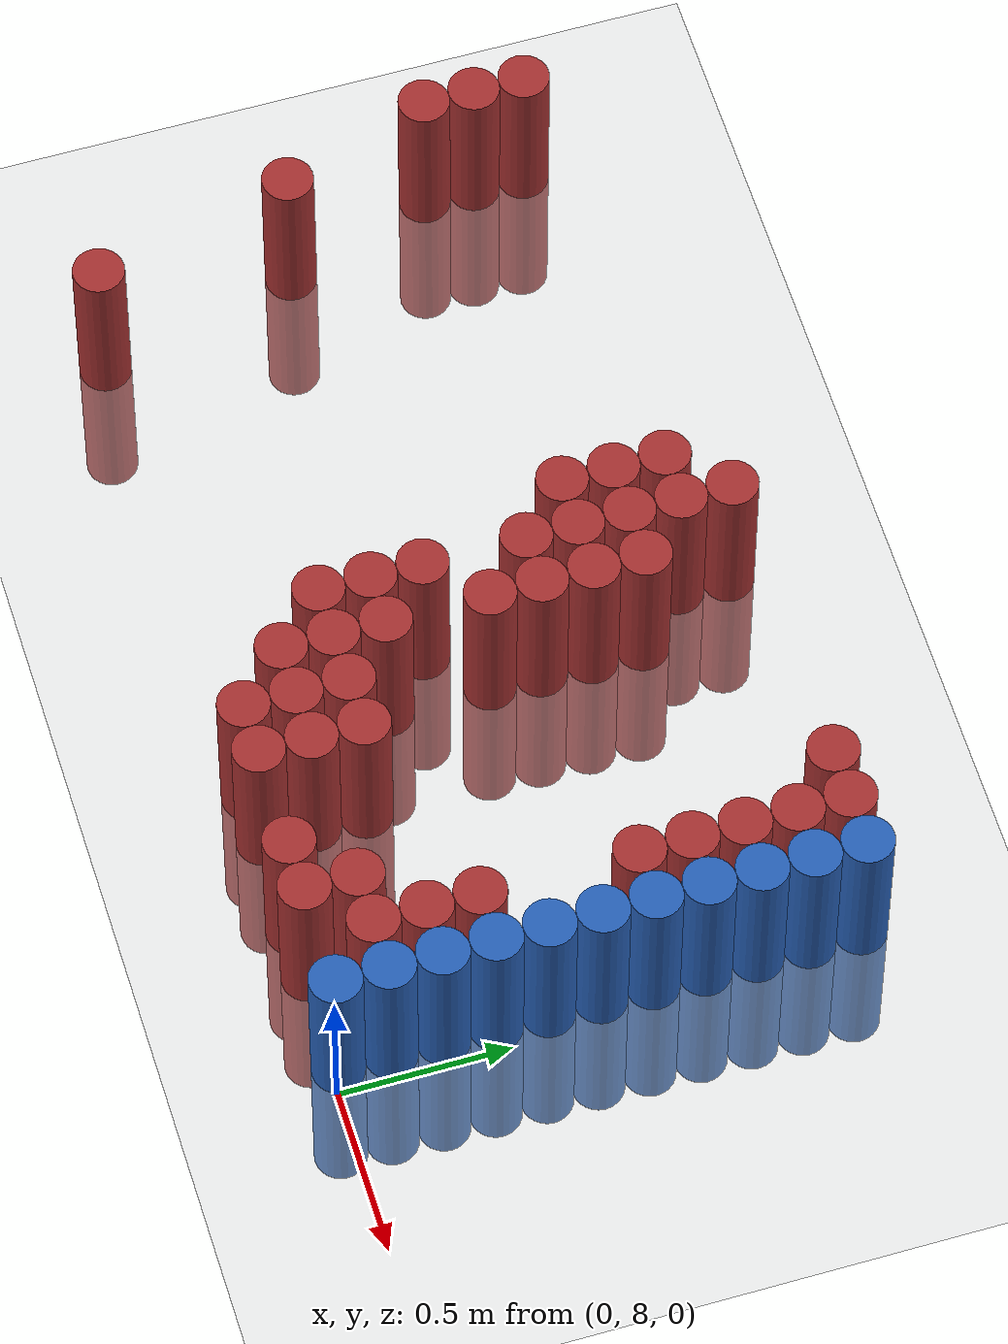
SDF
<sdf version="1.6">
 <world name="default">
  <model name="ground_plane">
   <static>1</static>
   <link name="link">
    <collision name="collision">
     <geometry><plane><normal>0 0 1</normal><size>100 100</size></plane></geometry>
     <surface><friction><ode><mu>100</mu><mu2>50</mu2></ode></friction></surface>
    </collision>
    <visual name="visual">
     <cast_shadows>0</cast_shadows>
     <geometry><plane><normal>0 0 1</normal><size>100 100</size></plane></geometry>
     <material>
      <script><uri>file://media/materials/scripts/gazebo.material</uri><name>Gazebo/Grey</name></script>
     </material>
    </visual>
   </link>
  </model>
  <model name="unit_cylinder_223">
   <static>1</static>
   <pose>-2.775000 9.075000 0.000000 0.000000 0.000000 0.000000</pose>
   <link name="link">
    <inertial>
     <mass>1</mass>
     <inertia><ixx>0.145833</ixx><ixy>0</ixy><ixz>0</ixz><iyy>0.145833</iyy><iyz>0</iyz><izz>0.125</izz></inertia>
    </inertial>
    <collision name="collision">
     <geometry><cylinder><radius>0.075000</radius><length>1</length></cylinder></geometry>
    </collision>
    <visual name="visual">
     <geometry><cylinder><radius>0.075000</radius><length>1</length></cylinder></geometry>
     <material>
      <ambient>0.648000 0.192000 0.192000 1</ambient>
      <diffuse>0.648000 0.192000 0.192000 1</diffuse>
     </material>
     <material>
      <script><name>Gazebo/Grey</name><uri>file://media/materials/scripts/gazebo.material</uri></script>
     </material>
    </visual>
   </link>
  </model>
  <model name="unit_cylinder_224">
   <static>1</static>
   <pose>-2.775000 9.225000 0.000000 0.000000 0.000000 0.000000</pose>
   <link name="link">
    <inertial>
     <mass>1</mass>
     <inertia><ixx>0.145833</ixx><ixy>0</ixy><ixz>0</ixz><iyy>0.145833</iyy><iyz>0</iyz><izz>0.125</izz></inertia>
    </inertial>
    <collision name="collision">
     <geometry><cylinder><radius>0.075000</radius><length>1</length></cylinder></geometry>
    </collision>
    <visual name="visual">
     <geometry><cylinder><radius>0.075000</radius><length>1</length></cylinder></geometry>
     <material>
      <ambient>0.648000 0.192000 0.192000 1</ambient>
      <diffuse>0.648000 0.192000 0.192000 1</diffuse>
     </material>
     <material>
      <script><name>Gazebo/Grey</name><uri>file://media/materials/scripts/gazebo.material</uri></script>
     </material>
    </visual>
   </link>
  </model>
  <model name="unit_cylinder_225">
   <static>1</static>
   <pose>-2.775000 9.375000 0.000000 0.000000 0.000000 0.000000</pose>
   <link name="link">
    <inertial>
     <mass>1</mass>
     <inertia><ixx>0.145833</ixx><ixy>0</ixy><ixz>0</ixz><iyy>0.145833</iyy><iyz>0</iyz><izz>0.125</izz></inertia>
    </inertial>
    <collision name="collision">
     <geometry><cylinder><radius>0.075000</radius><length>1</length></cylinder></geometry>
    </collision>
    <visual name="visual">
     <geometry><cylinder><radius>0.075000</radius><length>1</length></cylinder></geometry>
     <material>
      <ambient>0.648000 0.192000 0.192000 1</ambient>
      <diffuse>0.648000 0.192000 0.192000 1</diffuse>
     </material>
     <material>
      <script><name>Gazebo/Grey</name><uri>file://media/materials/scripts/gazebo.material</uri></script>
     </material>
    </visual>
   </link>
  </model>
  <model name="unit_cylinder_231">
   <static>1</static>
   <pose>-2.625000 8.625000 0.000000 0.000000 0.000000 0.000000</pose>
   <link name="link">
    <inertial>
     <mass>1</mass>
     <inertia><ixx>0.145833</ixx><ixy>0</ixy><ixz>0</ixz><iyy>0.145833</iyy><iyz>0</iyz><izz>0.125</izz></inertia>
    </inertial>
    <collision name="collision">
     <geometry><cylinder><radius>0.075000</radius><length>1</length></cylinder></geometry>
    </collision>
    <visual name="visual">
     <geometry><cylinder><radius>0.075000</radius><length>1</length></cylinder></geometry>
     <material>
      <ambient>0.648000 0.192000 0.192000 1</ambient>
      <diffuse>0.648000 0.192000 0.192000 1</diffuse>
     </material>
     <material>
      <script><name>Gazebo/Grey</name><uri>file://media/materials/scripts/gazebo.material</uri></script>
     </material>
    </visual>
   </link>
  </model>
  <model name="unit_cylinder_238">
   <static>1</static>
   <pose>-2.475000 8.025000 0.000000 0.000000 0.000000 0.000000</pose>
   <link name="link">
    <inertial>
     <mass>1</mass>
     <inertia><ixx>0.145833</ixx><ixy>0</ixy><ixz>0</ixz><iyy>0.145833</iyy><iyz>0</iyz><izz>0.125</izz></inertia>
    </inertial>
    <collision name="collision">
     <geometry><cylinder><radius>0.075000</radius><length>1</length></cylinder></geometry>
    </collision>
    <visual name="visual">
     <geometry><cylinder><radius>0.075000</radius><length>1</length></cylinder></geometry>
     <material>
      <ambient>0.648000 0.192000 0.192000 1</ambient>
      <diffuse>0.648000 0.192000 0.192000 1</diffuse>
     </material>
     <material>
      <script><name>Gazebo/Grey</name><uri>file://media/materials/scripts/gazebo.material</uri></script>
     </material>
    </visual>
   </link>
  </model>
  <model name="unit_cylinder_245">
   <static>1</static>
   <pose>-1.425000 9.075000 0.000000 0.000000 0.000000 0.000000</pose>
   <link name="link">
    <inertial>
     <mass>1</mass>
     <inertia><ixx>0.145833</ixx><ixy>0</ixy><ixz>0</ixz><iyy>0.145833</iyy><iyz>0</iyz><izz>0.125</izz></inertia>
    </inertial>
    <collision name="collision">
     <geometry><cylinder><radius>0.075000</radius><length>1</length></cylinder></geometry>
    </collision>
    <visual name="visual">
     <geometry><cylinder><radius>0.075000</radius><length>1</length></cylinder></geometry>
     <material>
      <ambient>0.648000 0.192000 0.192000 1</ambient>
      <diffuse>0.648000 0.192000 0.192000 1</diffuse>
     </material>
     <material>
      <script><name>Gazebo/Grey</name><uri>file://media/materials/scripts/gazebo.material</uri></script>
     </material>
    </visual>
   </link>
  </model>
  <model name="unit_cylinder_246">
   <static>1</static>
   <pose>-1.425000 9.225000 0.000000 0.000000 0.000000 0.000000</pose>
   <link name="link">
    <inertial>
     <mass>1</mass>
     <inertia><ixx>0.145833</ixx><ixy>0</ixy><ixz>0</ixz><iyy>0.145833</iyy><iyz>0</iyz><izz>0.125</izz></inertia>
    </inertial>
    <collision name="collision">
     <geometry><cylinder><radius>0.075000</radius><length>1</length></cylinder></geometry>
    </collision>
    <visual name="visual">
     <geometry><cylinder><radius>0.075000</radius><length>1</length></cylinder></geometry>
     <material>
      <ambient>0.648000 0.192000 0.192000 1</ambient>
      <diffuse>0.648000 0.192000 0.192000 1</diffuse>
     </material>
     <material>
      <script><name>Gazebo/Grey</name><uri>file://media/materials/scripts/gazebo.material</uri></script>
     </material>
    </visual>
   </link>
  </model>
  <model name="unit_cylinder_247">
   <static>1</static>
   <pose>-1.425000 9.375000 0.000000 0.000000 0.000000 0.000000</pose>
   <link name="link">
    <inertial>
     <mass>1</mass>
     <inertia><ixx>0.145833</ixx><ixy>0</ixy><ixz>0</ixz><iyy>0.145833</iyy><iyz>0</iyz><izz>0.125</izz></inertia>
    </inertial>
    <collision name="collision">
     <geometry><cylinder><radius>0.075000</radius><length>1</length></cylinder></geometry>
    </collision>
    <visual name="visual">
     <geometry><cylinder><radius>0.075000</radius><length>1</length></cylinder></geometry>
     <material>
      <ambient>0.648000 0.192000 0.192000 1</ambient>
      <diffuse>0.648000 0.192000 0.192000 1</diffuse>
     </material>
     <material>
      <script><name>Gazebo/Grey</name><uri>file://media/materials/scripts/gazebo.material</uri></script>
     </material>
    </visual>
   </link>
  </model>
  <model name="unit_cylinder_252">
   <static>1</static>
   <pose>-1.275000 8.325000 0.000000 0.000000 0.000000 0.000000</pose>
   <link name="link">
    <inertial>
     <mass>1</mass>
     <inertia><ixx>0.145833</ixx><ixy>0</ixy><ixz>0</ixz><iyy>0.145833</iyy><iyz>0</iyz><izz>0.125</izz></inertia>
    </inertial>
    <collision name="collision">
     <geometry><cylinder><radius>0.075000</radius><length>1</length></cylinder></geometry>
    </collision>
    <visual name="visual">
     <geometry><cylinder><radius>0.075000</radius><length>1</length></cylinder></geometry>
     <material>
      <ambient>0.648000 0.192000 0.192000 1</ambient>
      <diffuse>0.648000 0.192000 0.192000 1</diffuse>
     </material>
     <material>
      <script><name>Gazebo/Grey</name><uri>file://media/materials/scripts/gazebo.material</uri></script>
     </material>
    </visual>
   </link>
  </model>
  <model name="unit_cylinder_253">
   <static>1</static>
   <pose>-1.275000 8.475000 0.000000 0.000000 0.000000 0.000000</pose>
   <link name="link">
    <inertial>
     <mass>1</mass>
     <inertia><ixx>0.145833</ixx><ixy>0</ixy><ixz>0</ixz><iyy>0.145833</iyy><iyz>0</iyz><izz>0.125</izz></inertia>
    </inertial>
    <collision name="collision">
     <geometry><cylinder><radius>0.075000</radius><length>1</length></cylinder></geometry>
    </collision>
    <visual name="visual">
     <geometry><cylinder><radius>0.075000</radius><length>1</length></cylinder></geometry>
     <material>
      <ambient>0.648000 0.192000 0.192000 1</ambient>
      <diffuse>0.648000 0.192000 0.192000 1</diffuse>
     </material>
     <material>
      <script><name>Gazebo/Grey</name><uri>file://media/materials/scripts/gazebo.material</uri></script>
     </material>
    </visual>
   </link>
  </model>
  <model name="unit_cylinder_254">
   <static>1</static>
   <pose>-1.275000 8.625000 0.000000 0.000000 0.000000 0.000000</pose>
   <link name="link">
    <inertial>
     <mass>1</mass>
     <inertia><ixx>0.145833</ixx><ixy>0</ixy><ixz>0</ixz><iyy>0.145833</iyy><iyz>0</iyz><izz>0.125</izz></inertia>
    </inertial>
    <collision name="collision">
     <geometry><cylinder><radius>0.075000</radius><length>1</length></cylinder></geometry>
    </collision>
    <visual name="visual">
     <geometry><cylinder><radius>0.075000</radius><length>1</length></cylinder></geometry>
     <material>
      <ambient>0.648000 0.192000 0.192000 1</ambient>
      <diffuse>0.648000 0.192000 0.192000 1</diffuse>
     </material>
     <material>
      <script><name>Gazebo/Grey</name><uri>file://media/materials/scripts/gazebo.material</uri></script>
     </material>
    </visual>
   </link>
  </model>
  <model name="unit_cylinder_255">
   <static>1</static>
   <pose>-1.275000 8.925000 0.000000 0.000000 0.000000 0.000000</pose>
   <link name="link">
    <inertial>
     <mass>1</mass>
     <inertia><ixx>0.145833</ixx><ixy>0</ixy><ixz>0</ixz><iyy>0.145833</iyy><iyz>0</iyz><izz>0.125</izz></inertia>
    </inertial>
    <collision name="collision">
     <geometry><cylinder><radius>0.075000</radius><length>1</length></cylinder></geometry>
    </collision>
    <visual name="visual">
     <geometry><cylinder><radius>0.075000</radius><length>1</length></cylinder></geometry>
     <material>
      <ambient>0.648000 0.192000 0.192000 1</ambient>
      <diffuse>0.648000 0.192000 0.192000 1</diffuse>
     </material>
     <material>
      <script><name>Gazebo/Grey</name><uri>file://media/materials/scripts/gazebo.material</uri></script>
     </material>
    </visual>
   </link>
  </model>
  <model name="unit_cylinder_256">
   <static>1</static>
   <pose>-1.275000 9.075000 0.000000 0.000000 0.000000 0.000000</pose>
   <link name="link">
    <inertial>
     <mass>1</mass>
     <inertia><ixx>0.145833</ixx><ixy>0</ixy><ixz>0</ixz><iyy>0.145833</iyy><iyz>0</iyz><izz>0.125</izz></inertia>
    </inertial>
    <collision name="collision">
     <geometry><cylinder><radius>0.075000</radius><length>1</length></cylinder></geometry>
    </collision>
    <visual name="visual">
     <geometry><cylinder><radius>0.075000</radius><length>1</length></cylinder></geometry>
     <material>
      <ambient>0.648000 0.192000 0.192000 1</ambient>
      <diffuse>0.648000 0.192000 0.192000 1</diffuse>
     </material>
     <material>
      <script><name>Gazebo/Grey</name><uri>file://media/materials/scripts/gazebo.material</uri></script>
     </material>
    </visual>
   </link>
  </model>
  <model name="unit_cylinder_257">
   <static>1</static>
   <pose>-1.275000 9.225000 0.000000 0.000000 0.000000 0.000000</pose>
   <link name="link">
    <inertial>
     <mass>1</mass>
     <inertia><ixx>0.145833</ixx><ixy>0</ixy><ixz>0</ixz><iyy>0.145833</iyy><iyz>0</iyz><izz>0.125</izz></inertia>
    </inertial>
    <collision name="collision">
     <geometry><cylinder><radius>0.075000</radius><length>1</length></cylinder></geometry>
    </collision>
    <visual name="visual">
     <geometry><cylinder><radius>0.075000</radius><length>1</length></cylinder></geometry>
     <material>
      <ambient>0.648000 0.192000 0.192000 1</ambient>
      <diffuse>0.648000 0.192000 0.192000 1</diffuse>
     </material>
     <material>
      <script><name>Gazebo/Grey</name><uri>file://media/materials/scripts/gazebo.material</uri></script>
     </material>
    </visual>
   </link>
  </model>
  <model name="unit_cylinder_258">
   <static>1</static>
   <pose>-1.275000 9.375000 0.000000 0.000000 0.000000 0.000000</pose>
   <link name="link">
    <inertial>
     <mass>1</mass>
     <inertia><ixx>0.145833</ixx><ixy>0</ixy><ixz>0</ixz><iyy>0.145833</iyy><iyz>0</iyz><izz>0.125</izz></inertia>
    </inertial>
    <collision name="collision">
     <geometry><cylinder><radius>0.075000</radius><length>1</length></cylinder></geometry>
    </collision>
    <visual name="visual">
     <geometry><cylinder><radius>0.075000</radius><length>1</length></cylinder></geometry>
     <material>
      <ambient>0.648000 0.192000 0.192000 1</ambient>
      <diffuse>0.648000 0.192000 0.192000 1</diffuse>
     </material>
     <material>
      <script><name>Gazebo/Grey</name><uri>file://media/materials/scripts/gazebo.material</uri></script>
     </material>
    </visual>
   </link>
  </model>
  <model name="unit_cylinder_259">
   <static>1</static>
   <pose>-1.275000 9.525000 0.000000 0.000000 0.000000 0.000000</pose>
   <link name="link">
    <inertial>
     <mass>1</mass>
     <inertia><ixx>0.145833</ixx><ixy>0</ixy><ixz>0</ixz><iyy>0.145833</iyy><iyz>0</iyz><izz>0.125</izz></inertia>
    </inertial>
    <collision name="collision">
     <geometry><cylinder><radius>0.075000</radius><length>1</length></cylinder></geometry>
    </collision>
    <visual name="visual">
     <geometry><cylinder><radius>0.075000</radius><length>1</length></cylinder></geometry>
     <material>
      <ambient>0.648000 0.192000 0.192000 1</ambient>
      <diffuse>0.648000 0.192000 0.192000 1</diffuse>
     </material>
     <material>
      <script><name>Gazebo/Grey</name><uri>file://media/materials/scripts/gazebo.material</uri></script>
     </material>
    </visual>
   </link>
  </model>
  <model name="unit_cylinder_263">
   <static>1</static>
   <pose>-1.125000 8.175000 0.000000 0.000000 0.000000 0.000000</pose>
   <link name="link">
    <inertial>
     <mass>1</mass>
     <inertia><ixx>0.145833</ixx><ixy>0</ixy><ixz>0</ixz><iyy>0.145833</iyy><iyz>0</iyz><izz>0.125</izz></inertia>
    </inertial>
    <collision name="collision">
     <geometry><cylinder><radius>0.075000</radius><length>1</length></cylinder></geometry>
    </collision>
    <visual name="visual">
     <geometry><cylinder><radius>0.075000</radius><length>1</length></cylinder></geometry>
     <material>
      <ambient>0.648000 0.192000 0.192000 1</ambient>
      <diffuse>0.648000 0.192000 0.192000 1</diffuse>
     </material>
     <material>
      <script><name>Gazebo/Grey</name><uri>file://media/materials/scripts/gazebo.material</uri></script>
     </material>
    </visual>
   </link>
  </model>
  <model name="unit_cylinder_264">
   <static>1</static>
   <pose>-1.125000 8.325000 0.000000 0.000000 0.000000 0.000000</pose>
   <link name="link">
    <inertial>
     <mass>1</mass>
     <inertia><ixx>0.145833</ixx><ixy>0</ixy><ixz>0</ixz><iyy>0.145833</iyy><iyz>0</iyz><izz>0.125</izz></inertia>
    </inertial>
    <collision name="collision">
     <geometry><cylinder><radius>0.075000</radius><length>1</length></cylinder></geometry>
    </collision>
    <visual name="visual">
     <geometry><cylinder><radius>0.075000</radius><length>1</length></cylinder></geometry>
     <material>
      <ambient>0.648000 0.192000 0.192000 1</ambient>
      <diffuse>0.648000 0.192000 0.192000 1</diffuse>
     </material>
     <material>
      <script><name>Gazebo/Grey</name><uri>file://media/materials/scripts/gazebo.material</uri></script>
     </material>
    </visual>
   </link>
  </model>
  <model name="unit_cylinder_265">
   <static>1</static>
   <pose>-1.125000 8.475000 0.000000 0.000000 0.000000 0.000000</pose>
   <link name="link">
    <inertial>
     <mass>1</mass>
     <inertia><ixx>0.145833</ixx><ixy>0</ixy><ixz>0</ixz><iyy>0.145833</iyy><iyz>0</iyz><izz>0.125</izz></inertia>
    </inertial>
    <collision name="collision">
     <geometry><cylinder><radius>0.075000</radius><length>1</length></cylinder></geometry>
    </collision>
    <visual name="visual">
     <geometry><cylinder><radius>0.075000</radius><length>1</length></cylinder></geometry>
     <material>
      <ambient>0.648000 0.192000 0.192000 1</ambient>
      <diffuse>0.648000 0.192000 0.192000 1</diffuse>
     </material>
     <material>
      <script><name>Gazebo/Grey</name><uri>file://media/materials/scripts/gazebo.material</uri></script>
     </material>
    </visual>
   </link>
  </model>
  <model name="unit_cylinder_266">
   <static>1</static>
   <pose>-1.125000 8.775000 0.000000 0.000000 0.000000 0.000000</pose>
   <link name="link">
    <inertial>
     <mass>1</mass>
     <inertia><ixx>0.145833</ixx><ixy>0</ixy><ixz>0</ixz><iyy>0.145833</iyy><iyz>0</iyz><izz>0.125</izz></inertia>
    </inertial>
    <collision name="collision">
     <geometry><cylinder><radius>0.075000</radius><length>1</length></cylinder></geometry>
    </collision>
    <visual name="visual">
     <geometry><cylinder><radius>0.075000</radius><length>1</length></cylinder></geometry>
     <material>
      <ambient>0.648000 0.192000 0.192000 1</ambient>
      <diffuse>0.648000 0.192000 0.192000 1</diffuse>
     </material>
     <material>
      <script><name>Gazebo/Grey</name><uri>file://media/materials/scripts/gazebo.material</uri></script>
     </material>
    </visual>
   </link>
  </model>
  <model name="unit_cylinder_267">
   <static>1</static>
   <pose>-1.125000 8.925000 0.000000 0.000000 0.000000 0.000000</pose>
   <link name="link">
    <inertial>
     <mass>1</mass>
     <inertia><ixx>0.145833</ixx><ixy>0</ixy><ixz>0</ixz><iyy>0.145833</iyy><iyz>0</iyz><izz>0.125</izz></inertia>
    </inertial>
    <collision name="collision">
     <geometry><cylinder><radius>0.075000</radius><length>1</length></cylinder></geometry>
    </collision>
    <visual name="visual">
     <geometry><cylinder><radius>0.075000</radius><length>1</length></cylinder></geometry>
     <material>
      <ambient>0.648000 0.192000 0.192000 1</ambient>
      <diffuse>0.648000 0.192000 0.192000 1</diffuse>
     </material>
     <material>
      <script><name>Gazebo/Grey</name><uri>file://media/materials/scripts/gazebo.material</uri></script>
     </material>
    </visual>
   </link>
  </model>
  <model name="unit_cylinder_268">
   <static>1</static>
   <pose>-1.125000 9.075000 0.000000 0.000000 0.000000 0.000000</pose>
   <link name="link">
    <inertial>
     <mass>1</mass>
     <inertia><ixx>0.145833</ixx><ixy>0</ixy><ixz>0</ixz><iyy>0.145833</iyy><iyz>0</iyz><izz>0.125</izz></inertia>
    </inertial>
    <collision name="collision">
     <geometry><cylinder><radius>0.075000</radius><length>1</length></cylinder></geometry>
    </collision>
    <visual name="visual">
     <geometry><cylinder><radius>0.075000</radius><length>1</length></cylinder></geometry>
     <material>
      <ambient>0.648000 0.192000 0.192000 1</ambient>
      <diffuse>0.648000 0.192000 0.192000 1</diffuse>
     </material>
     <material>
      <script><name>Gazebo/Grey</name><uri>file://media/materials/scripts/gazebo.material</uri></script>
     </material>
    </visual>
   </link>
  </model>
  <model name="unit_cylinder_269">
   <static>1</static>
   <pose>-1.125000 9.225000 0.000000 0.000000 0.000000 0.000000</pose>
   <link name="link">
    <inertial>
     <mass>1</mass>
     <inertia><ixx>0.145833</ixx><ixy>0</ixy><ixz>0</ixz><iyy>0.145833</iyy><iyz>0</iyz><izz>0.125</izz></inertia>
    </inertial>
    <collision name="collision">
     <geometry><cylinder><radius>0.075000</radius><length>1</length></cylinder></geometry>
    </collision>
    <visual name="visual">
     <geometry><cylinder><radius>0.075000</radius><length>1</length></cylinder></geometry>
     <material>
      <ambient>0.648000 0.192000 0.192000 1</ambient>
      <diffuse>0.648000 0.192000 0.192000 1</diffuse>
     </material>
     <material>
      <script><name>Gazebo/Grey</name><uri>file://media/materials/scripts/gazebo.material</uri></script>
     </material>
    </visual>
   </link>
  </model>
  <model name="unit_cylinder_276">
   <static>1</static>
   <pose>-0.975000 8.025000 0.000000 0.000000 0.000000 0.000000</pose>
   <link name="link">
    <inertial>
     <mass>1</mass>
     <inertia><ixx>0.145833</ixx><ixy>0</ixy><ixz>0</ixz><iyy>0.145833</iyy><iyz>0</iyz><izz>0.125</izz></inertia>
    </inertial>
    <collision name="collision">
     <geometry><cylinder><radius>0.075000</radius><length>1</length></cylinder></geometry>
    </collision>
    <visual name="visual">
     <geometry><cylinder><radius>0.075000</radius><length>1</length></cylinder></geometry>
     <material>
      <ambient>0.648000 0.192000 0.192000 1</ambient>
      <diffuse>0.648000 0.192000 0.192000 1</diffuse>
     </material>
     <material>
      <script><name>Gazebo/Grey</name><uri>file://media/materials/scripts/gazebo.material</uri></script>
     </material>
    </visual>
   </link>
  </model>
  <model name="unit_cylinder_277">
   <static>1</static>
   <pose>-0.975000 8.175000 0.000000 0.000000 0.000000 0.000000</pose>
   <link name="link">
    <inertial>
     <mass>1</mass>
     <inertia><ixx>0.145833</ixx><ixy>0</ixy><ixz>0</ixz><iyy>0.145833</iyy><iyz>0</iyz><izz>0.125</izz></inertia>
    </inertial>
    <collision name="collision">
     <geometry><cylinder><radius>0.075000</radius><length>1</length></cylinder></geometry>
    </collision>
    <visual name="visual">
     <geometry><cylinder><radius>0.075000</radius><length>1</length></cylinder></geometry>
     <material>
      <ambient>0.648000 0.192000 0.192000 1</ambient>
      <diffuse>0.648000 0.192000 0.192000 1</diffuse>
     </material>
     <material>
      <script><name>Gazebo/Grey</name><uri>file://media/materials/scripts/gazebo.material</uri></script>
     </material>
    </visual>
   </link>
  </model>
  <model name="unit_cylinder_278">
   <static>1</static>
   <pose>-0.975000 8.325000 0.000000 0.000000 0.000000 0.000000</pose>
   <link name="link">
    <inertial>
     <mass>1</mass>
     <inertia><ixx>0.145833</ixx><ixy>0</ixy><ixz>0</ixz><iyy>0.145833</iyy><iyz>0</iyz><izz>0.125</izz></inertia>
    </inertial>
    <collision name="collision">
     <geometry><cylinder><radius>0.075000</radius><length>1</length></cylinder></geometry>
    </collision>
    <visual name="visual">
     <geometry><cylinder><radius>0.075000</radius><length>1</length></cylinder></geometry>
     <material>
      <ambient>0.648000 0.192000 0.192000 1</ambient>
      <diffuse>0.648000 0.192000 0.192000 1</diffuse>
     </material>
     <material>
      <script><name>Gazebo/Grey</name><uri>file://media/materials/scripts/gazebo.material</uri></script>
     </material>
    </visual>
   </link>
  </model>
  <model name="unit_cylinder_285">
   <static>1</static>
   <pose>-0.825000 8.025000 0.000000 0.000000 0.000000 0.000000</pose>
   <link name="link">
    <inertial>
     <mass>1</mass>
     <inertia><ixx>0.145833</ixx><ixy>0</ixy><ixz>0</ixz><iyy>0.145833</iyy><iyz>0</iyz><izz>0.125</izz></inertia>
    </inertial>
    <collision name="collision">
     <geometry><cylinder><radius>0.075000</radius><length>1</length></cylinder></geometry>
    </collision>
    <visual name="visual">
     <geometry><cylinder><radius>0.075000</radius><length>1</length></cylinder></geometry>
     <material>
      <ambient>0.648000 0.192000 0.192000 1</ambient>
      <diffuse>0.648000 0.192000 0.192000 1</diffuse>
     </material>
     <material>
      <script><name>Gazebo/Grey</name><uri>file://media/materials/scripts/gazebo.material</uri></script>
     </material>
    </visual>
   </link>
  </model>
  <model name="unit_cylinder_286">
   <static>1</static>
   <pose>-0.825000 8.175000 0.000000 0.000000 0.000000 0.000000</pose>
   <link name="link">
    <inertial>
     <mass>1</mass>
     <inertia><ixx>0.145833</ixx><ixy>0</ixy><ixz>0</ixz><iyy>0.145833</iyy><iyz>0</iyz><izz>0.125</izz></inertia>
    </inertial>
    <collision name="collision">
     <geometry><cylinder><radius>0.075000</radius><length>1</length></cylinder></geometry>
    </collision>
    <visual name="visual">
     <geometry><cylinder><radius>0.075000</radius><length>1</length></cylinder></geometry>
     <material>
      <ambient>0.648000 0.192000 0.192000 1</ambient>
      <diffuse>0.648000 0.192000 0.192000 1</diffuse>
     </material>
     <material>
      <script><name>Gazebo/Grey</name><uri>file://media/materials/scripts/gazebo.material</uri></script>
     </material>
    </visual>
   </link>
  </model>
  <model name="unit_cylinder_287">
   <static>1</static>
   <pose>-0.825000 8.325000 0.000000 0.000000 0.000000 0.000000</pose>
   <link name="link">
    <inertial>
     <mass>1</mass>
     <inertia><ixx>0.145833</ixx><ixy>0</ixy><ixz>0</ixz><iyy>0.145833</iyy><iyz>0</iyz><izz>0.125</izz></inertia>
    </inertial>
    <collision name="collision">
     <geometry><cylinder><radius>0.075000</radius><length>1</length></cylinder></geometry>
    </collision>
    <visual name="visual">
     <geometry><cylinder><radius>0.075000</radius><length>1</length></cylinder></geometry>
     <material>
      <ambient>0.648000 0.192000 0.192000 1</ambient>
      <diffuse>0.648000 0.192000 0.192000 1</diffuse>
     </material>
     <material>
      <script><name>Gazebo/Grey</name><uri>file://media/materials/scripts/gazebo.material</uri></script>
     </material>
    </visual>
   </link>
  </model>
  <model name="unit_cylinder_296">
   <static>1</static>
   <pose>-0.525000 8.025000 0.000000 0.000000 0.000000 0.000000</pose>
   <link name="link">
    <inertial>
     <mass>1</mass>
     <inertia><ixx>0.145833</ixx><ixy>0</ixy><ixz>0</ixz><iyy>0.145833</iyy><iyz>0</iyz><izz>0.125</izz></inertia>
    </inertial>
    <collision name="collision">
     <geometry><cylinder><radius>0.075000</radius><length>1</length></cylinder></geometry>
    </collision>
    <visual name="visual">
     <geometry><cylinder><radius>0.075000</radius><length>1</length></cylinder></geometry>
     <material>
      <ambient>0.648000 0.192000 0.192000 1</ambient>
      <diffuse>0.648000 0.192000 0.192000 1</diffuse>
     </material>
     <material>
      <script><name>Gazebo/Grey</name><uri>file://media/materials/scripts/gazebo.material</uri></script>
     </material>
    </visual>
   </link>
  </model>
  <model name="unit_cylinder_309">
   <static>1</static>
   <pose>-0.375000 8.025000 0.000000 0.000000 0.000000 0.000000</pose>
   <link name="link">
    <inertial>
     <mass>1</mass>
     <inertia><ixx>0.145833</ixx><ixy>0</ixy><ixz>0</ixz><iyy>0.145833</iyy><iyz>0</iyz><izz>0.125</izz></inertia>
    </inertial>
    <collision name="collision">
     <geometry><cylinder><radius>0.075000</radius><length>1</length></cylinder></geometry>
    </collision>
    <visual name="visual">
     <geometry><cylinder><radius>0.075000</radius><length>1</length></cylinder></geometry>
     <material>
      <ambient>0.648000 0.192000 0.192000 1</ambient>
      <diffuse>0.648000 0.192000 0.192000 1</diffuse>
     </material>
     <material>
      <script><name>Gazebo/Grey</name><uri>file://media/materials/scripts/gazebo.material</uri></script>
     </material>
    </visual>
   </link>
  </model>
  <model name="unit_cylinder_310">
   <static>1</static>
   <pose>-0.375000 8.175000 0.000000 0.000000 0.000000 0.000000</pose>
   <link name="link">
    <inertial>
     <mass>1</mass>
     <inertia><ixx>0.145833</ixx><ixy>0</ixy><ixz>0</ixz><iyy>0.145833</iyy><iyz>0</iyz><izz>0.125</izz></inertia>
    </inertial>
    <collision name="collision">
     <geometry><cylinder><radius>0.075000</radius><length>1</length></cylinder></geometry>
    </collision>
    <visual name="visual">
     <geometry><cylinder><radius>0.075000</radius><length>1</length></cylinder></geometry>
     <material>
      <ambient>0.648000 0.192000 0.192000 1</ambient>
      <diffuse>0.648000 0.192000 0.192000 1</diffuse>
     </material>
     <material>
      <script><name>Gazebo/Grey</name><uri>file://media/materials/scripts/gazebo.material</uri></script>
     </material>
    </visual>
   </link>
  </model>
  <model name="unit_cylinder_311">
   <static>1</static>
   <pose>-0.375000 9.525000 0.000000 0.000000 0.000000 0.000000</pose>
   <link name="link">
    <inertial>
     <mass>1</mass>
     <inertia><ixx>0.145833</ixx><ixy>0</ixy><ixz>0</ixz><iyy>0.145833</iyy><iyz>0</iyz><izz>0.125</izz></inertia>
    </inertial>
    <collision name="collision">
     <geometry><cylinder><radius>0.075000</radius><length>1</length></cylinder></geometry>
    </collision>
    <visual name="visual">
     <geometry><cylinder><radius>0.075000</radius><length>1</length></cylinder></geometry>
     <material>
      <ambient>0.648000 0.192000 0.192000 1</ambient>
      <diffuse>0.648000 0.192000 0.192000 1</diffuse>
     </material>
     <material>
      <script><name>Gazebo/Grey</name><uri>file://media/materials/scripts/gazebo.material</uri></script>
     </material>
    </visual>
   </link>
  </model>
  <model name="unit_cylinder_323">
   <static>1</static>
   <pose>-0.225000 8.175000 0.000000 0.000000 0.000000 0.000000</pose>
   <link name="link">
    <inertial>
     <mass>1</mass>
     <inertia><ixx>0.145833</ixx><ixy>0</ixy><ixz>0</ixz><iyy>0.145833</iyy><iyz>0</iyz><izz>0.125</izz></inertia>
    </inertial>
    <collision name="collision">
     <geometry><cylinder><radius>0.075000</radius><length>1</length></cylinder></geometry>
    </collision>
    <visual name="visual">
     <geometry><cylinder><radius>0.075000</radius><length>1</length></cylinder></geometry>
     <material>
      <ambient>0.648000 0.192000 0.192000 1</ambient>
      <diffuse>0.648000 0.192000 0.192000 1</diffuse>
     </material>
     <material>
      <script><name>Gazebo/Grey</name><uri>file://media/materials/scripts/gazebo.material</uri></script>
     </material>
    </visual>
   </link>
  </model>
  <model name="unit_cylinder_324">
   <static>1</static>
   <pose>-0.225000 8.325000 0.000000 0.000000 0.000000 0.000000</pose>
   <link name="link">
    <inertial>
     <mass>1</mass>
     <inertia><ixx>0.145833</ixx><ixy>0</ixy><ixz>0</ixz><iyy>0.145833</iyy><iyz>0</iyz><izz>0.125</izz></inertia>
    </inertial>
    <collision name="collision">
     <geometry><cylinder><radius>0.075000</radius><length>1</length></cylinder></geometry>
    </collision>
    <visual name="visual">
     <geometry><cylinder><radius>0.075000</radius><length>1</length></cylinder></geometry>
     <material>
      <ambient>0.648000 0.192000 0.192000 1</ambient>
      <diffuse>0.648000 0.192000 0.192000 1</diffuse>
     </material>
     <material>
      <script><name>Gazebo/Grey</name><uri>file://media/materials/scripts/gazebo.material</uri></script>
     </material>
    </visual>
   </link>
  </model>
  <model name="unit_cylinder_325">
   <static>1</static>
   <pose>-0.225000 8.475000 0.000000 0.000000 0.000000 0.000000</pose>
   <link name="link">
    <inertial>
     <mass>1</mass>
     <inertia><ixx>0.145833</ixx><ixy>0</ixy><ixz>0</ixz><iyy>0.145833</iyy><iyz>0</iyz><izz>0.125</izz></inertia>
    </inertial>
    <collision name="collision">
     <geometry><cylinder><radius>0.075000</radius><length>1</length></cylinder></geometry>
    </collision>
    <visual name="visual">
     <geometry><cylinder><radius>0.075000</radius><length>1</length></cylinder></geometry>
     <material>
      <ambient>0.648000 0.192000 0.192000 1</ambient>
      <diffuse>0.648000 0.192000 0.192000 1</diffuse>
     </material>
     <material>
      <script><name>Gazebo/Grey</name><uri>file://media/materials/scripts/gazebo.material</uri></script>
     </material>
    </visual>
   </link>
  </model>
  <model name="unit_cylinder_326">
   <static>1</static>
   <pose>-0.225000 8.925000 0.000000 0.000000 0.000000 0.000000</pose>
   <link name="link">
    <inertial>
     <mass>1</mass>
     <inertia><ixx>0.145833</ixx><ixy>0</ixy><ixz>0</ixz><iyy>0.145833</iyy><iyz>0</iyz><izz>0.125</izz></inertia>
    </inertial>
    <collision name="collision">
     <geometry><cylinder><radius>0.075000</radius><length>1</length></cylinder></geometry>
    </collision>
    <visual name="visual">
     <geometry><cylinder><radius>0.075000</radius><length>1</length></cylinder></geometry>
     <material>
      <ambient>0.648000 0.192000 0.192000 1</ambient>
      <diffuse>0.648000 0.192000 0.192000 1</diffuse>
     </material>
     <material>
      <script><name>Gazebo/Grey</name><uri>file://media/materials/scripts/gazebo.material</uri></script>
     </material>
    </visual>
   </link>
  </model>
  <model name="unit_cylinder_327">
   <static>1</static>
   <pose>-0.225000 9.075000 0.000000 0.000000 0.000000 0.000000</pose>
   <link name="link">
    <inertial>
     <mass>1</mass>
     <inertia><ixx>0.145833</ixx><ixy>0</ixy><ixz>0</ixz><iyy>0.145833</iyy><iyz>0</iyz><izz>0.125</izz></inertia>
    </inertial>
    <collision name="collision">
     <geometry><cylinder><radius>0.075000</radius><length>1</length></cylinder></geometry>
    </collision>
    <visual name="visual">
     <geometry><cylinder><radius>0.075000</radius><length>1</length></cylinder></geometry>
     <material>
      <ambient>0.648000 0.192000 0.192000 1</ambient>
      <diffuse>0.648000 0.192000 0.192000 1</diffuse>
     </material>
     <material>
      <script><name>Gazebo/Grey</name><uri>file://media/materials/scripts/gazebo.material</uri></script>
     </material>
    </visual>
   </link>
  </model>
  <model name="unit_cylinder_328">
   <static>1</static>
   <pose>-0.225000 9.225000 0.000000 0.000000 0.000000 0.000000</pose>
   <link name="link">
    <inertial>
     <mass>1</mass>
     <inertia><ixx>0.145833</ixx><ixy>0</ixy><ixz>0</ixz><iyy>0.145833</iyy><iyz>0</iyz><izz>0.125</izz></inertia>
    </inertial>
    <collision name="collision">
     <geometry><cylinder><radius>0.075000</radius><length>1</length></cylinder></geometry>
    </collision>
    <visual name="visual">
     <geometry><cylinder><radius>0.075000</radius><length>1</length></cylinder></geometry>
     <material>
      <ambient>0.648000 0.192000 0.192000 1</ambient>
      <diffuse>0.648000 0.192000 0.192000 1</diffuse>
     </material>
     <material>
      <script><name>Gazebo/Grey</name><uri>file://media/materials/scripts/gazebo.material</uri></script>
     </material>
    </visual>
   </link>
  </model>
  <model name="unit_cylinder_329">
   <static>1</static>
   <pose>-0.225000 9.375000 0.000000 0.000000 0.000000 0.000000</pose>
   <link name="link">
    <inertial>
     <mass>1</mass>
     <inertia><ixx>0.145833</ixx><ixy>0</ixy><ixz>0</ixz><iyy>0.145833</iyy><iyz>0</iyz><izz>0.125</izz></inertia>
    </inertial>
    <collision name="collision">
     <geometry><cylinder><radius>0.075000</radius><length>1</length></cylinder></geometry>
    </collision>
    <visual name="visual">
     <geometry><cylinder><radius>0.075000</radius><length>1</length></cylinder></geometry>
     <material>
      <ambient>0.648000 0.192000 0.192000 1</ambient>
      <diffuse>0.648000 0.192000 0.192000 1</diffuse>
     </material>
     <material>
      <script><name>Gazebo/Grey</name><uri>file://media/materials/scripts/gazebo.material</uri></script>
     </material>
    </visual>
   </link>
  </model>
  <model name="unit_cylinder_330">
   <static>1</static>
   <pose>-0.225000 9.525000 0.000000 0.000000 0.000000 0.000000</pose>
   <link name="link">
    <inertial>
     <mass>1</mass>
     <inertia><ixx>0.145833</ixx><ixy>0</ixy><ixz>0</ixz><iyy>0.145833</iyy><iyz>0</iyz><izz>0.125</izz></inertia>
    </inertial>
    <collision name="collision">
     <geometry><cylinder><radius>0.075000</radius><length>1</length></cylinder></geometry>
    </collision>
    <visual name="visual">
     <geometry><cylinder><radius>0.075000</radius><length>1</length></cylinder></geometry>
     <material>
      <ambient>0.648000 0.192000 0.192000 1</ambient>
      <diffuse>0.648000 0.192000 0.192000 1</diffuse>
     </material>
     <material>
      <script><name>Gazebo/Grey</name><uri>file://media/materials/scripts/gazebo.material</uri></script>
     </material>
    </visual>
   </link>
  </model>
  <model name="unit_cylinder_350">
   <static>1</static>
   <pose>-0.075000 8.025000 0.000000 0.000000 0.000000 0.000000</pose>
   <link name="link">
    <inertial>
     <mass>1</mass>
     <inertia><ixx>0.145833</ixx><ixy>0</ixy><ixz>0</ixz><iyy>0.145833</iyy><iyz>0</iyz><izz>0.125</izz></inertia>
    </inertial>
    <collision name="collision">
     <geometry><cylinder><radius>0.075000</radius><length>1</length></cylinder></geometry>
    </collision>
    <visual name="visual">
     <geometry><cylinder><radius>0.075000</radius><length>1</length></cylinder></geometry>
     <material>
      <ambient>0.152000 0.379000 0.720000 1</ambient>
      <diffuse>0.152000 0.379000 0.720000 1</diffuse>
     </material>
     <material>
      <script><name>Gazebo/Grey</name><uri>file://media/materials/scripts/gazebo.material</uri></script>
     </material>
    </visual>
   </link>
  </model>
  <model name="unit_cylinder_351">
   <static>1</static>
   <pose>-0.075000 8.175000 0.000000 0.000000 0.000000 0.000000</pose>
   <link name="link">
    <inertial>
     <mass>1</mass>
     <inertia><ixx>0.145833</ixx><ixy>0</ixy><ixz>0</ixz><iyy>0.145833</iyy><iyz>0</iyz><izz>0.125</izz></inertia>
    </inertial>
    <collision name="collision">
     <geometry><cylinder><radius>0.075000</radius><length>1</length></cylinder></geometry>
    </collision>
    <visual name="visual">
     <geometry><cylinder><radius>0.075000</radius><length>1</length></cylinder></geometry>
     <material>
      <ambient>0.152000 0.379000 0.720000 1</ambient>
      <diffuse>0.152000 0.379000 0.720000 1</diffuse>
     </material>
     <material>
      <script><name>Gazebo/Grey</name><uri>file://media/materials/scripts/gazebo.material</uri></script>
     </material>
    </visual>
   </link>
  </model>
  <model name="unit_cylinder_352">
   <static>1</static>
   <pose>-0.075000 8.325000 0.000000 0.000000 0.000000 0.000000</pose>
   <link name="link">
    <inertial>
     <mass>1</mass>
     <inertia><ixx>0.145833</ixx><ixy>0</ixy><ixz>0</ixz><iyy>0.145833</iyy><iyz>0</iyz><izz>0.125</izz></inertia>
    </inertial>
    <collision name="collision">
     <geometry><cylinder><radius>0.075000</radius><length>1</length></cylinder></geometry>
    </collision>
    <visual name="visual">
     <geometry><cylinder><radius>0.075000</radius><length>1</length></cylinder></geometry>
     <material>
      <ambient>0.152000 0.379000 0.720000 1</ambient>
      <diffuse>0.152000 0.379000 0.720000 1</diffuse>
     </material>
     <material>
      <script><name>Gazebo/Grey</name><uri>file://media/materials/scripts/gazebo.material</uri></script>
     </material>
    </visual>
   </link>
  </model>
  <model name="unit_cylinder_353">
   <static>1</static>
   <pose>-0.075000 8.475000 0.000000 0.000000 0.000000 0.000000</pose>
   <link name="link">
    <inertial>
     <mass>1</mass>
     <inertia><ixx>0.145833</ixx><ixy>0</ixy><ixz>0</ixz><iyy>0.145833</iyy><iyz>0</iyz><izz>0.125</izz></inertia>
    </inertial>
    <collision name="collision">
     <geometry><cylinder><radius>0.075000</radius><length>1</length></cylinder></geometry>
    </collision>
    <visual name="visual">
     <geometry><cylinder><radius>0.075000</radius><length>1</length></cylinder></geometry>
     <material>
      <ambient>0.152000 0.379000 0.720000 1</ambient>
      <diffuse>0.152000 0.379000 0.720000 1</diffuse>
     </material>
     <material>
      <script><name>Gazebo/Grey</name><uri>file://media/materials/scripts/gazebo.material</uri></script>
     </material>
    </visual>
   </link>
  </model>
  <model name="unit_cylinder_354">
   <static>1</static>
   <pose>-0.075000 8.625000 0.000000 0.000000 0.000000 0.000000</pose>
   <link name="link">
    <inertial>
     <mass>1</mass>
     <inertia><ixx>0.145833</ixx><ixy>0</ixy><ixz>0</ixz><iyy>0.145833</iyy><iyz>0</iyz><izz>0.125</izz></inertia>
    </inertial>
    <collision name="collision">
     <geometry><cylinder><radius>0.075000</radius><length>1</length></cylinder></geometry>
    </collision>
    <visual name="visual">
     <geometry><cylinder><radius>0.075000</radius><length>1</length></cylinder></geometry>
     <material>
      <ambient>0.152000 0.379000 0.720000 1</ambient>
      <diffuse>0.152000 0.379000 0.720000 1</diffuse>
     </material>
     <material>
      <script><name>Gazebo/Grey</name><uri>file://media/materials/scripts/gazebo.material</uri></script>
     </material>
    </visual>
   </link>
  </model>
  <model name="unit_cylinder_355">
   <static>1</static>
   <pose>-0.075000 8.775000 0.000000 0.000000 0.000000 0.000000</pose>
   <link name="link">
    <inertial>
     <mass>1</mass>
     <inertia><ixx>0.145833</ixx><ixy>0</ixy><ixz>0</ixz><iyy>0.145833</iyy><iyz>0</iyz><izz>0.125</izz></inertia>
    </inertial>
    <collision name="collision">
     <geometry><cylinder><radius>0.075000</radius><length>1</length></cylinder></geometry>
    </collision>
    <visual name="visual">
     <geometry><cylinder><radius>0.075000</radius><length>1</length></cylinder></geometry>
     <material>
      <ambient>0.152000 0.379000 0.720000 1</ambient>
      <diffuse>0.152000 0.379000 0.720000 1</diffuse>
     </material>
     <material>
      <script><name>Gazebo/Grey</name><uri>file://media/materials/scripts/gazebo.material</uri></script>
     </material>
    </visual>
   </link>
  </model>
  <model name="unit_cylinder_356">
   <static>1</static>
   <pose>-0.075000 8.925000 0.000000 0.000000 0.000000 0.000000</pose>
   <link name="link">
    <inertial>
     <mass>1</mass>
     <inertia><ixx>0.145833</ixx><ixy>0</ixy><ixz>0</ixz><iyy>0.145833</iyy><iyz>0</iyz><izz>0.125</izz></inertia>
    </inertial>
    <collision name="collision">
     <geometry><cylinder><radius>0.075000</radius><length>1</length></cylinder></geometry>
    </collision>
    <visual name="visual">
     <geometry><cylinder><radius>0.075000</radius><length>1</length></cylinder></geometry>
     <material>
      <ambient>0.152000 0.379000 0.720000 1</ambient>
      <diffuse>0.152000 0.379000 0.720000 1</diffuse>
     </material>
     <material>
      <script><name>Gazebo/Grey</name><uri>file://media/materials/scripts/gazebo.material</uri></script>
     </material>
    </visual>
   </link>
  </model>
  <model name="unit_cylinder_357">
   <static>1</static>
   <pose>-0.075000 9.075000 0.000000 0.000000 0.000000 0.000000</pose>
   <link name="link">
    <inertial>
     <mass>1</mass>
     <inertia><ixx>0.145833</ixx><ixy>0</ixy><ixz>0</ixz><iyy>0.145833</iyy><iyz>0</iyz><izz>0.125</izz></inertia>
    </inertial>
    <collision name="collision">
     <geometry><cylinder><radius>0.075000</radius><length>1</length></cylinder></geometry>
    </collision>
    <visual name="visual">
     <geometry><cylinder><radius>0.075000</radius><length>1</length></cylinder></geometry>
     <material>
      <ambient>0.152000 0.379000 0.720000 1</ambient>
      <diffuse>0.152000 0.379000 0.720000 1</diffuse>
     </material>
     <material>
      <script><name>Gazebo/Grey</name><uri>file://media/materials/scripts/gazebo.material</uri></script>
     </material>
    </visual>
   </link>
  </model>
  <model name="unit_cylinder_358">
   <static>1</static>
   <pose>-0.075000 9.225000 0.000000 0.000000 0.000000 0.000000</pose>
   <link name="link">
    <inertial>
     <mass>1</mass>
     <inertia><ixx>0.145833</ixx><ixy>0</ixy><ixz>0</ixz><iyy>0.145833</iyy><iyz>0</iyz><izz>0.125</izz></inertia>
    </inertial>
    <collision name="collision">
     <geometry><cylinder><radius>0.075000</radius><length>1</length></cylinder></geometry>
    </collision>
    <visual name="visual">
     <geometry><cylinder><radius>0.075000</radius><length>1</length></cylinder></geometry>
     <material>
      <ambient>0.152000 0.379000 0.720000 1</ambient>
      <diffuse>0.152000 0.379000 0.720000 1</diffuse>
     </material>
     <material>
      <script><name>Gazebo/Grey</name><uri>file://media/materials/scripts/gazebo.material</uri></script>
     </material>
    </visual>
   </link>
  </model>
  <model name="unit_cylinder_359">
   <static>1</static>
   <pose>-0.075000 9.375000 0.000000 0.000000 0.000000 0.000000</pose>
   <link name="link">
    <inertial>
     <mass>1</mass>
     <inertia><ixx>0.145833</ixx><ixy>0</ixy><ixz>0</ixz><iyy>0.145833</iyy><iyz>0</iyz><izz>0.125</izz></inertia>
    </inertial>
    <collision name="collision">
     <geometry><cylinder><radius>0.075000</radius><length>1</length></cylinder></geometry>
    </collision>
    <visual name="visual">
     <geometry><cylinder><radius>0.075000</radius><length>1</length></cylinder></geometry>
     <material>
      <ambient>0.152000 0.379000 0.720000 1</ambient>
      <diffuse>0.152000 0.379000 0.720000 1</diffuse>
     </material>
     <material>
      <script><name>Gazebo/Grey</name><uri>file://media/materials/scripts/gazebo.material</uri></script>
     </material>
    </visual>
   </link>
  </model>
  <model name="unit_cylinder_360">
   <static>1</static>
   <pose>-0.075000 9.525000 0.000000 0.000000 0.000000 0.000000</pose>
   <link name="link">
    <inertial>
     <mass>1</mass>
     <inertia><ixx>0.145833</ixx><ixy>0</ixy><ixz>0</ixz><iyy>0.145833</iyy><iyz>0</iyz><izz>0.125</izz></inertia>
    </inertial>
    <collision name="collision">
     <geometry><cylinder><radius>0.075000</radius><length>1</length></cylinder></geometry>
    </collision>
    <visual name="visual">
     <geometry><cylinder><radius>0.075000</radius><length>1</length></cylinder></geometry>
     <material>
      <ambient>0.152000 0.379000 0.720000 1</ambient>
      <diffuse>0.152000 0.379000 0.720000 1</diffuse>
     </material>
     <material>
      <script><name>Gazebo/Grey</name><uri>file://media/materials/scripts/gazebo.material</uri></script>
     </material>
    </visual>
   </link>
  </model>
 </world>
</sdf>
